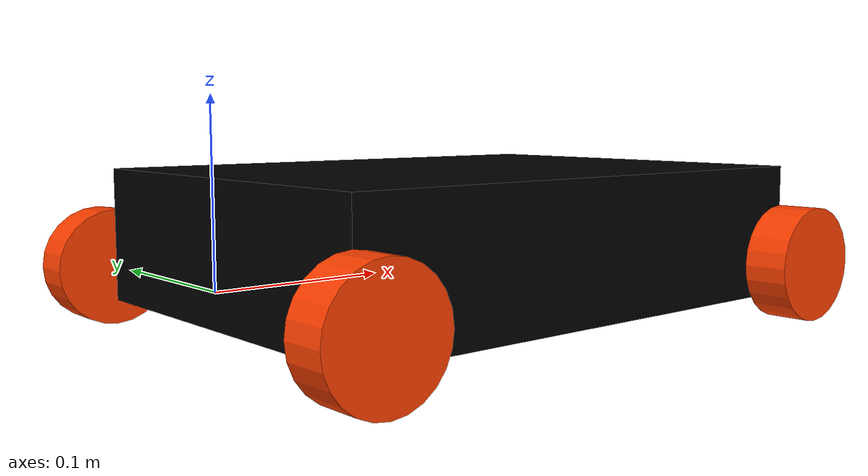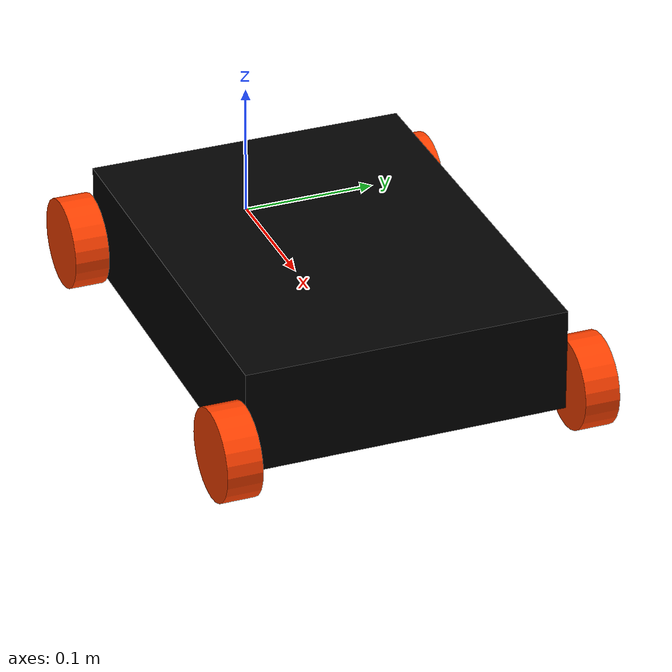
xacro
<?xml version="1.0"?>
<robot xmlns:xacro="http://www.ros.org/wiki/xacro">

    <xacro:include filename="inertial_macros.xacro"/>

    <xacro:property name="chassis_length"  value="0.320"/>
    <xacro:property name="chassis_width"   value="0.240"/>
    <xacro:property name="chassis_height"  value="0.078"/>
    <xacro:property name="chassis_mass"    value="0.700"/>

    <xacro:property name="wheel_radius"    value="0.034"/>
    <xacro:property name="wheel_thickness" value="0.026"/>
    <xacro:property name="wheel_mass"      value="0.050"/>

    <xacro:property name="wheel_offset_y"  value="0.133"/>
    <xacro:property name="wheel_offset_z"  value="0.020"/>

    <xacro:property name="wheelbase"       value="${chassis_length}"/>

    <material name="white"><color rgba="1 1 1 1"/></material>
    <material name="black"><color rgba="0 0 0 1"/></material>
    <material name="orange"><color rgba="1 0.25 0 1"/></material>
    <material name="cyan"><color rgba="0 1 1 1"/></material>
    <material name="indigo"><color rgba="0.294 0 0.51 1"/></material>

    <link name="base_link"/>
    <joint name="base_footprint_joint" type="fixed">
        <parent link="base_link"/>
        <child link="base_footprint"/>
        <origin xyz="0 0 0" rpy="0 0 0"/>
    </joint>
    <link name="base_footprint"/>

    <joint name="chasis_joint" type="fixed">
        <parent link="base_link"/>
        <child link="chasis"/>
        <origin xyz="0 0 ${-wheel_offset_z}"/>
    </joint>

    <link name="chasis">
        <visual>
            <origin xyz="${chassis_length/2} 0 ${chassis_height/2}"/>
            <geometry>
                <box size="${chassis_length} ${chassis_width} ${chassis_height}"/>
            </geometry>
            <material name="black"/>
        </visual>
        <collision>
            <origin xyz="${chassis_length/2} 0 ${chassis_height/2}"/>
            <geometry>
                <box size="${chassis_length} ${chassis_width} ${chassis_height}"/>
            </geometry>
        </collision>
        <xacro:inertial_box mass="${chassis_mass}"
                            x="${chassis_length}" y="${chassis_width}" z="${chassis_height}">
            <origin xyz="${chassis_length/2} 0 ${chassis_height/2}"/>
        </xacro:inertial_box>
    </link>

    <joint name="rear_left_wheel_joint" type="continuous">
        <parent link="base_link"/>
        <child  link="rear_left_wheel"/>
        <origin xyz="0 ${wheel_offset_y} 0" rpy="${pi/2} 0 0"/>
        <axis xyz="0 0 -1"/>
    </joint>

    <link name="rear_left_wheel">
        <visual>
            <geometry>
                <cylinder radius="${wheel_radius}" length="${wheel_thickness}"/>
            </geometry>
            <material name="orange"/>
        </visual>
        <collision>
            <geometry><sphere radius="${wheel_radius}"/></geometry>
        </collision>
        <xacro:inertial_cylinder mass="${wheel_mass}"
                                 radius="${wheel_radius}" length="${wheel_thickness}">
            <origin xyz="0 0 0"/>
        </xacro:inertial_cylinder>
    </link>
    <joint name="rear_right_wheel_joint" type="continuous">
        <parent link="base_link"/>
        <child  link="rear_right_wheel"/>
        <origin xyz="0 ${-wheel_offset_y} 0" rpy="${pi/2} 0 0"/>
        <axis xyz="0 0 -1"/>
    </joint>

    <link name="rear_right_wheel">
        <visual>
            <geometry>
                <cylinder radius="${wheel_radius}" length="${wheel_thickness}"/>
            </geometry>
            <material name="orange"/>
        </visual>
        <collision>
            <geometry><sphere radius="${wheel_radius}"/></geometry>
        </collision>
        <xacro:inertial_cylinder mass="${wheel_mass}"
                                 radius="${wheel_radius}" length="${wheel_thickness}">
            <origin xyz="0 0 0"/>
        </xacro:inertial_cylinder>
    </link>
    <joint name="front_left_steer_joint" type="revolute">
        <parent link="base_link"/>
        <child  link="front_left_steer"/>
        <origin xyz="${wheelbase} ${wheel_offset_y} 0"/>
        <axis xyz="0 0 1"/>
        <limit effort="5.0" velocity="2.0" lower="-0.6" upper="0.6"/>
    </joint>

    <link name="front_left_steer">
        <visual>
            <origin xyz="0 0 0"/>
            <geometry><sphere radius="0.01"/></geometry>
            <material name="cyan"/>
        </visual>
        <collision><geometry><sphere radius="0.01"/></geometry></collision>
        <xacro:inertial_sphere mass="0.01" radius="0.01">
            <origin xyz="0 0 0"/>
        </xacro:inertial_sphere>
    </link>

    <joint name="front_left_wheel_joint" type="continuous">
        <parent link="front_left_steer"/>
        <child  link="front_left_wheel"/>
        <origin xyz="0 0 0" rpy="${pi/2} 0 0"/>
        <axis xyz="0 0 -1"/>
    </joint>

    <link name="front_left_wheel">
        <visual>
            <geometry>
                <cylinder radius="${wheel_radius}" length="${wheel_thickness}"/>
            </geometry>
            <material name="orange"/>
        </visual>
        <collision>
            <geometry><sphere radius="${wheel_radius}"/></geometry>
        </collision>
        <xacro:inertial_cylinder mass="${wheel_mass}"
                                 radius="${wheel_radius}" length="${wheel_thickness}">
            <origin xyz="0 0 0"/>
        </xacro:inertial_cylinder>
    </link>
    <joint name="front_right_steer_joint" type="revolute">
        <parent link="base_link"/>
        <child  link="front_right_steer"/>
        <origin xyz="${wheelbase} ${-wheel_offset_y} 0"/>
        <axis xyz="0 0 1"/>
        <limit effort="5.0" velocity="2.0" lower="-0.6" upper="0.6"/>
    </joint>

    <link name="front_right_steer">
        <visual>
            <origin xyz="0 0 0"/>
            <geometry><sphere radius="0.01"/></geometry>
            <material name="cyan"/>
        </visual>
        <collision><geometry><sphere radius="0.01"/></geometry></collision>
        <xacro:inertial_sphere mass="0.01" radius="0.01">
            <origin xyz="0 0 0"/>
        </xacro:inertial_sphere>
    </link>

    <joint name="front_right_wheel_joint" type="continuous">
        <parent link="front_right_steer"/>
        <child  link="front_right_wheel"/>
        <origin xyz="0 0 0" rpy="${pi/2} 0 0"/>
        <axis xyz="0 0 -1"/>
    </joint>

    <link name="front_right_wheel">
        <visual>
            <geometry>
                <cylinder radius="${wheel_radius}" length="${wheel_thickness}"/>
            </geometry>
            <material name="orange"/>
        </visual>
        <collision>
            <geometry><sphere radius="${wheel_radius}"/></geometry>
        </collision>
        <xacro:inertial_cylinder mass="${wheel_mass}"
                                 radius="${wheel_radius}" length="${wheel_thickness}">
            <origin xyz="0 0 0"/>
        </xacro:inertial_cylinder>
    </link>
    <gazebo>
        <plugin filename="gz-sim-ackermann-steering-system" name="gz::sim::systems::AckermannSteering">
            <left_joint>rear_left_wheel_joint</left_joint>
            <right_joint>rear_right_wheel_joint</right_joint>
            <left_steering_joint>front_left_steer_joint</left_steering_joint>
            <right_steering_joint>front_right_steer_joint</right_steering_joint>
            <kingpin_width>${2 * wheel_offset_y}</kingpin_width>
            <steering_limit>0.6</steering_limit>
            <wheel_base>${wheelbase}</wheel_base>
            <wheel_separation>${2 * wheel_offset_y}</wheel_separation>
            <wheel_radius>${wheel_radius}</wheel_radius>
            <min_velocity>-10</min_velocity>
            <max_velocity>10</max_velocity>
            <min_acceleration>-3</min_acceleration>
            <max_acceleration>3</max_acceleration>
            <topic>/cmd_vel</topic>
        </plugin>

        <plugin filename="gz-sim-odometry-publisher-system" name="gz::sim::systems::OdometryPublisher">
            <odom_frame>odom</odom_frame>
            <robot_base_frame>base_link</robot_base_frame>
            <odom_publish_frequency>50</odom_publish_frequency>
            <topic>/odom</topic>
            <tf_topic>/tf</tf_topic>
            <xyz_offset>0 0 0</xyz_offset>
            <rpy_offset>0 0 0</rpy_offset>
            <gaussian_noise>0</gaussian_noise>
        </plugin>
    </gazebo>

</robot>
